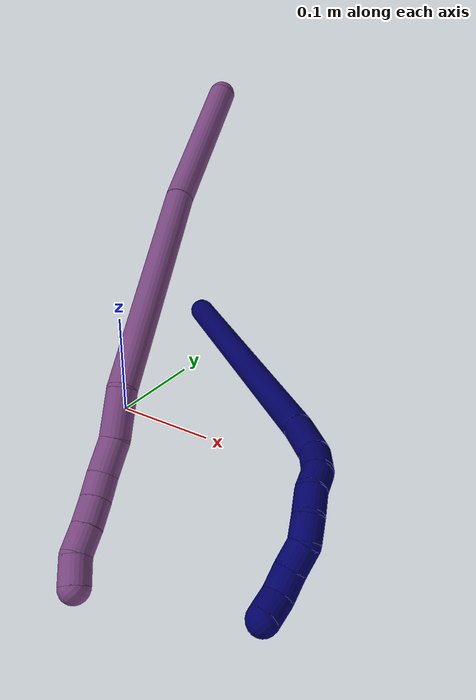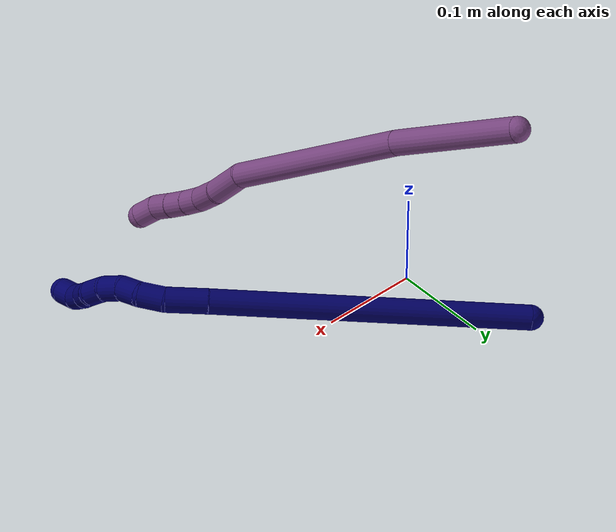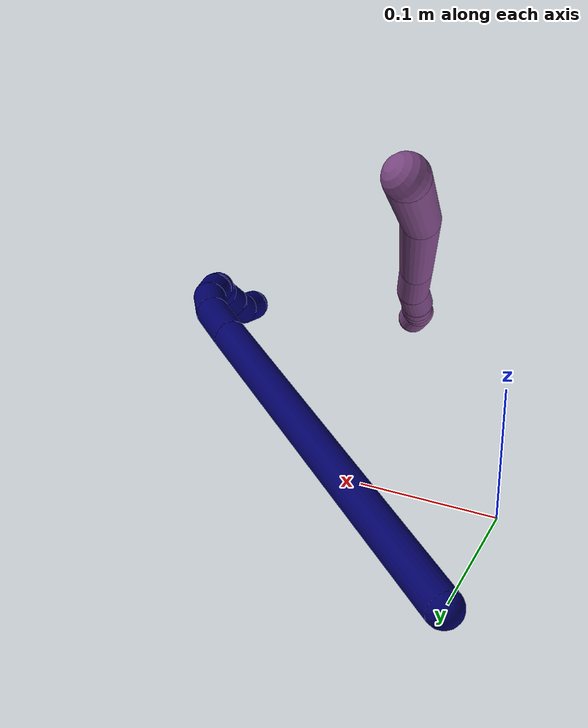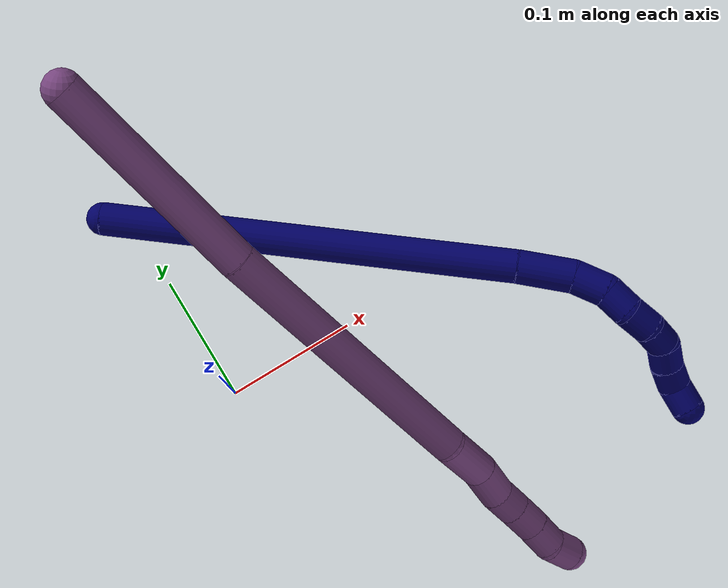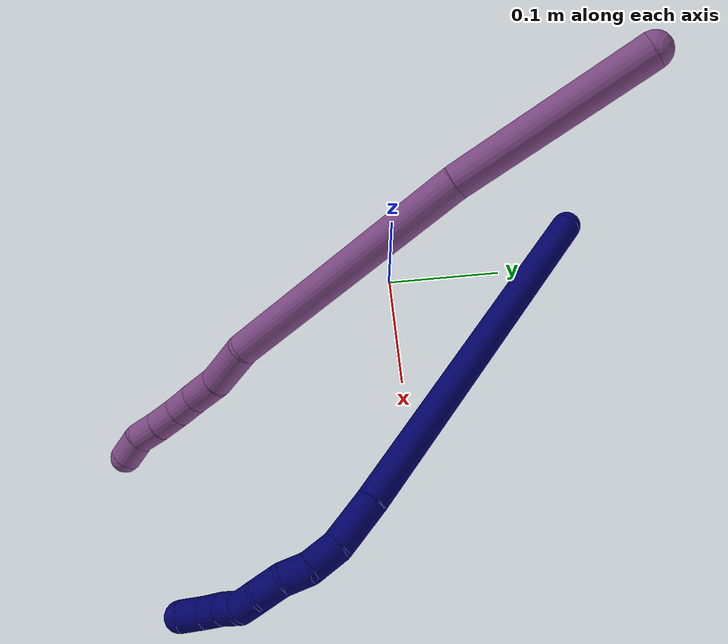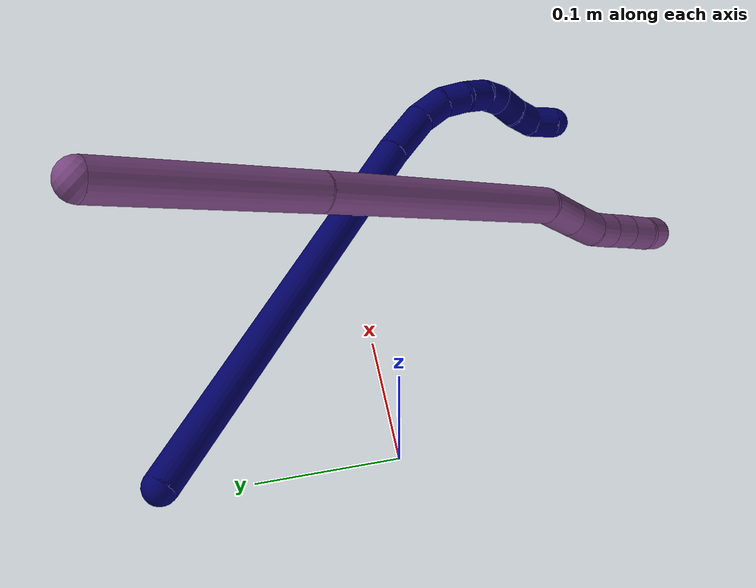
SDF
<sdf version="1.7">
 <world name="default">
  <model name="7">
   <static>0</static>
   <link name="7">
    <collision name="collision-cylinder-e_1_1_4">
     <pose>0.09733 -0.034654 -0.116008 2.85131 0.677109 2.35464</pose>
     <geometry><cylinder><radius>0.0125</radius><length>0.310689</length></cylinder></geometry>
     <surface>
      <friction><ode><mu>1.16</mu><mu2>1.16</mu2><slip1>0</slip1><slip2>0</slip2></ode></friction>
      <contact><ode><kp>1e+06</kp><kd>1</kd><max_vel>0</max_vel><min_depth>0.001</min_depth></ode></contact>
     </surface>
    </collision>
    <visual name="visual-cylinder-e_1_1_4">
     <pose>0.09733 -0.034654 -0.116008 2.85131 0.677109 2.35464</pose>
     <geometry><cylinder><radius>0.0125</radius><length>0.310689</length></cylinder></geometry>
     <material><ambient>0.003922 0 0.403922 1</ambient></material>
    </visual>
    <collision name="collision-cylinder-e_2_4_5">
     <pose>0.206725 -0.075126 -0.247806 2.78859 0.622048 2.12849</pose>
     <geometry><cylinder><radius>0.0125</radius><length>0.04141</length></cylinder></geometry>
     <surface>
      <friction><ode><mu>1.16</mu><mu2>1.16</mu2><slip1>0</slip1><slip2>0</slip2></ode></friction>
      <contact><ode><kp>1e+06</kp><kd>1</kd><max_vel>0</max_vel><min_depth>0.001</min_depth></ode></contact>
     </surface>
    </collision>
    <visual name="visual-cylinder-e_2_4_5">
     <pose>0.206725 -0.075126 -0.247806 2.78859 0.622048 2.12849</pose>
     <geometry><cylinder><radius>0.0125</radius><length>0.04141</length></cylinder></geometry>
     <material><ambient>0.003922 0 0.403922 1</ambient></material>
    </visual>
    <collision name="collision-cylinder-e_3_5_6">
     <pose>0.226061 -0.08728 -0.271899 2.48973 0.608116 1.49658</pose>
     <geometry><cylinder><radius>0.0125</radius><length>0.025455</length></cylinder></geometry>
     <surface>
      <friction><ode><mu>1.16</mu><mu2>1.16</mu2><slip1>0</slip1><slip2>0</slip2></ode></friction>
      <contact><ode><kp>1e+06</kp><kd>1</kd><max_vel>0</max_vel><min_depth>0.001</min_depth></ode></contact>
     </surface>
    </collision>
    <visual name="visual-cylinder-e_3_5_6">
     <pose>0.226061 -0.08728 -0.271899 2.48973 0.608116 1.49658</pose>
     <geometry><cylinder><radius>0.0125</radius><length>0.025455</length></cylinder></geometry>
     <material><ambient>0.003922 0 0.403922 1</ambient></material>
    </visual>
    <collision name="collision-cylinder-e_4_6_7">
     <pose>0.237328 -0.101537 -0.285647 2.17302 0.393989 0.725221</pose>
     <geometry><cylinder><radius>0.0125</radius><length>0.020816</length></cylinder></geometry>
     <surface>
      <friction><ode><mu>1.16</mu><mu2>1.16</mu2><slip1>0</slip1><slip2>0</slip2></ode></friction>
      <contact><ode><kp>1e+06</kp><kd>1</kd><max_vel>0</max_vel><min_depth>0.001</min_depth></ode></contact>
     </surface>
    </collision>
    <visual name="visual-cylinder-e_4_6_7">
     <pose>0.237328 -0.101537 -0.285647 2.17302 0.393989 0.725221</pose>
     <geometry><cylinder><radius>0.0125</radius><length>0.020816</length></cylinder></geometry>
     <material><ambient>0.003922 0 0.403922 1</ambient></material>
    </visual>
    <collision name="collision-cylinder-e_5_7_8">
     <pose>0.243003 -0.116571 -0.298726 2.39149 0.159592 0.400793</pose>
     <geometry><cylinder><radius>0.0125</radius><length>0.021138</length></cylinder></geometry>
     <surface>
      <friction><ode><mu>1.16</mu><mu2>1.16</mu2><slip1>0</slip1><slip2>0</slip2></ode></friction>
      <contact><ode><kp>1e+06</kp><kd>1</kd><max_vel>0</max_vel><min_depth>0.001</min_depth></ode></contact>
     </surface>
    </collision>
    <visual name="visual-cylinder-e_5_7_8">
     <pose>0.243003 -0.116571 -0.298726 2.39149 0.159592 0.400793</pose>
     <geometry><cylinder><radius>0.0125</radius><length>0.021138</length></cylinder></geometry>
     <material><ambient>0.003922 0 0.403922 1</ambient></material>
    </visual>
    <collision name="collision-cylinder-e_6_8_9">
     <pose>0.243445 -0.130436 -0.313683 2.39675 -0.123678 -0.314384</pose>
     <geometry><cylinder><radius>0.0125</radius><length>0.020074</length></cylinder></geometry>
     <surface>
      <friction><ode><mu>1.16</mu><mu2>1.16</mu2><slip1>0</slip1><slip2>0</slip2></ode></friction>
      <contact><ode><kp>1e+06</kp><kd>1</kd><max_vel>0</max_vel><min_depth>0.001</min_depth></ode></contact>
     </surface>
    </collision>
    <visual name="visual-cylinder-e_6_8_9">
     <pose>0.243445 -0.130436 -0.313683 2.39675 -0.123678 -0.314384</pose>
     <geometry><cylinder><radius>0.0125</radius><length>0.020074</length></cylinder></geometry>
     <material><ambient>0.003922 0 0.403922 1</ambient></material>
    </visual>
    <collision name="collision-cylinder-e_7_9_10">
     <pose>0.238421 -0.145485 -0.325216 2.04036 -0.386402 -0.616973</pose>
     <geometry><cylinder><radius>0.0125</radius><length>0.020091</length></cylinder></geometry>
     <surface>
      <friction><ode><mu>1.16</mu><mu2>1.16</mu2><slip1>0</slip1><slip2>0</slip2></ode></friction>
      <contact><ode><kp>1e+06</kp><kd>1</kd><max_vel>0</max_vel><min_depth>0.001</min_depth></ode></contact>
     </surface>
    </collision>
    <visual name="visual-cylinder-e_7_9_10">
     <pose>0.238421 -0.145485 -0.325216 2.04036 -0.386402 -0.616973</pose>
     <geometry><cylinder><radius>0.0125</radius><length>0.020091</length></cylinder></geometry>
     <material><ambient>0.003922 0 0.403922 1</ambient></material>
    </visual>
    <collision name="collision-cylinder-e_8_10_11">
     <pose>0.232188 -0.162149 -0.334418 2.10877 -0.246067 -0.428867</pose>
     <geometry><cylinder><radius>0.0125</radius><length>0.020089</length></cylinder></geometry>
     <surface>
      <friction><ode><mu>1.16</mu><mu2>1.16</mu2><slip1>0</slip1><slip2>0</slip2></ode></friction>
      <contact><ode><kp>1e+06</kp><kd>1</kd><max_vel>0</max_vel><min_depth>0.001</min_depth></ode></contact>
     </surface>
    </collision>
    <visual name="visual-cylinder-e_8_10_11">
     <pose>0.232188 -0.162149 -0.334418 2.10877 -0.246067 -0.428867</pose>
     <geometry><cylinder><radius>0.0125</radius><length>0.020089</length></cylinder></geometry>
     <material><ambient>0.003922 0 0.403922 1</ambient></material>
    </visual>
    <collision name="collision-cylinder-e_9_11_2">
     <pose>0.231615 -0.179655 -0.343325 1.9755 0.186197 0.281266</pose>
     <geometry><cylinder><radius>0.0125</radius><length>0.020237</length></cylinder></geometry>
     <surface>
      <friction><ode><mu>1.16</mu><mu2>1.16</mu2><slip1>0</slip1><slip2>0</slip2></ode></friction>
      <contact><ode><kp>1e+06</kp><kd>1</kd><max_vel>0</max_vel><min_depth>0.001</min_depth></ode></contact>
     </surface>
    </collision>
    <visual name="visual-cylinder-e_9_11_2">
     <pose>0.231615 -0.179655 -0.343325 1.9755 0.186197 0.281266</pose>
     <geometry><cylinder><radius>0.0125</radius><length>0.020237</length></cylinder></geometry>
     <material><ambient>0.003922 0 0.403922 1</ambient></material>
    </visual>
    <collision name="collision-sphere-2">
     <pose>0.233488 -0.188795 -0.34724 0 -0 0</pose>
     <geometry><sphere><radius>0.0125</radius></sphere></geometry>
     <surface>
      <friction><ode><mu>1.16</mu><mu2>1.16</mu2><slip1>0</slip1><slip2>0</slip2></ode></friction>
      <contact><ode><kp>1e+06</kp><kd>1</kd><max_vel>0</max_vel><min_depth>0.001</min_depth></ode></contact>
     </surface>
    </collision>
    <visual name="visual-sphere-2">
     <pose>0.233488 -0.188795 -0.34724 0 -0 0</pose>
     <geometry><sphere><radius>0.0125</radius></sphere></geometry>
     <material><ambient>0.003922 0 0.403922 1</ambient></material>
    </visual>
    <collision name="collision-sphere-11">
     <pose>0.229742 -0.170515 -0.33941 0 -0 0</pose>
     <geometry><sphere><radius>0.0125</radius></sphere></geometry>
     <surface>
      <friction><ode><mu>1.16</mu><mu2>1.16</mu2><slip1>0</slip1><slip2>0</slip2></ode></friction>
      <contact><ode><kp>1e+06</kp><kd>1</kd><max_vel>0</max_vel><min_depth>0.001</min_depth></ode></contact>
     </surface>
    </collision>
    <visual name="visual-sphere-11">
     <pose>0.229742 -0.170515 -0.33941 0 -0 0</pose>
     <geometry><sphere><radius>0.0125</radius></sphere></geometry>
     <material><ambient>0.003922 0 0.403922 1</ambient></material>
    </visual>
    <collision name="collision-sphere-10">
     <pose>0.234635 -0.153783 -0.329426 0 -0 0</pose>
     <geometry><sphere><radius>0.0125</radius></sphere></geometry>
     <surface>
      <friction><ode><mu>1.16</mu><mu2>1.16</mu2><slip1>0</slip1><slip2>0</slip2></ode></friction>
      <contact><ode><kp>1e+06</kp><kd>1</kd><max_vel>0</max_vel><min_depth>0.001</min_depth></ode></contact>
     </surface>
    </collision>
    <visual name="visual-sphere-10">
     <pose>0.234635 -0.153783 -0.329426 0 -0 0</pose>
     <geometry><sphere><radius>0.0125</radius></sphere></geometry>
     <material><ambient>0.003922 0 0.403922 1</ambient></material>
    </visual>
    <collision name="collision-sphere-9">
     <pose>0.242207 -0.137187 -0.321005 0 -0 0</pose>
     <geometry><sphere><radius>0.0125</radius></sphere></geometry>
     <surface>
      <friction><ode><mu>1.16</mu><mu2>1.16</mu2><slip1>0</slip1><slip2>0</slip2></ode></friction>
      <contact><ode><kp>1e+06</kp><kd>1</kd><max_vel>0</max_vel><min_depth>0.001</min_depth></ode></contact>
     </surface>
    </collision>
    <visual name="visual-sphere-9">
     <pose>0.242207 -0.137187 -0.321005 0 -0 0</pose>
     <geometry><sphere><radius>0.0125</radius></sphere></geometry>
     <material><ambient>0.003922 0 0.403922 1</ambient></material>
    </visual>
    <collision name="collision-sphere-4">
     <pose>0.19466 -0.069308 -0.232016 0 -0 0</pose>
     <geometry><sphere><radius>0.0125</radius></sphere></geometry>
     <surface>
      <friction><ode><mu>1.16</mu><mu2>1.16</mu2><slip1>0</slip1><slip2>0</slip2></ode></friction>
      <contact><ode><kp>1e+06</kp><kd>1</kd><max_vel>0</max_vel><min_depth>0.001</min_depth></ode></contact>
     </surface>
    </collision>
    <visual name="visual-sphere-4">
     <pose>0.19466 -0.069308 -0.232016 0 -0 0</pose>
     <geometry><sphere><radius>0.0125</radius></sphere></geometry>
     <material><ambient>0.003922 0 0.403922 1</ambient></material>
    </visual>
    <collision name="collision-sphere-1">
     <geometry><sphere><radius>0.0125</radius></sphere></geometry>
     <surface>
      <friction><ode><mu>1.16</mu><mu2>1.16</mu2><slip1>0</slip1><slip2>0</slip2></ode></friction>
      <contact><ode><kp>1e+06</kp><kd>1</kd><max_vel>0</max_vel><min_depth>0.001</min_depth></ode></contact>
     </surface>
    </collision>
    <visual name="visual-sphere-1">
     <geometry><sphere><radius>0.0125</radius></sphere></geometry>
     <material><ambient>0.003922 0 0.403922 1</ambient></material>
    </visual>
    <collision name="collision-sphere-8">
     <pose>0.244683 -0.123684 -0.30636 0 -0 0</pose>
     <geometry><sphere><radius>0.0125</radius></sphere></geometry>
     <surface>
      <friction><ode><mu>1.16</mu><mu2>1.16</mu2><slip1>0</slip1><slip2>0</slip2></ode></friction>
      <contact><ode><kp>1e+06</kp><kd>1</kd><max_vel>0</max_vel><min_depth>0.001</min_depth></ode></contact>
     </surface>
    </collision>
    <visual name="visual-sphere-8">
     <pose>0.244683 -0.123684 -0.30636 0 -0 0</pose>
     <geometry><sphere><radius>0.0125</radius></sphere></geometry>
     <material><ambient>0.003922 0 0.403922 1</ambient></material>
    </visual>
    <collision name="collision-sphere-5">
     <pose>0.21879 -0.080943 -0.263595 0 -0 0</pose>
     <geometry><sphere><radius>0.0125</radius></sphere></geometry>
     <surface>
      <friction><ode><mu>1.16</mu><mu2>1.16</mu2><slip1>0</slip1><slip2>0</slip2></ode></friction>
      <contact><ode><kp>1e+06</kp><kd>1</kd><max_vel>0</max_vel><min_depth>0.001</min_depth></ode></contact>
     </surface>
    </collision>
    <visual name="visual-sphere-5">
     <pose>0.21879 -0.080943 -0.263595 0 -0 0</pose>
     <geometry><sphere><radius>0.0125</radius></sphere></geometry>
     <material><ambient>0.003922 0 0.403922 1</ambient></material>
    </visual>
    <collision name="collision-sphere-6">
     <pose>0.233333 -0.093617 -0.280203 0 -0 0</pose>
     <geometry><sphere><radius>0.0125</radius></sphere></geometry>
     <surface>
      <friction><ode><mu>1.16</mu><mu2>1.16</mu2><slip1>0</slip1><slip2>0</slip2></ode></friction>
      <contact><ode><kp>1e+06</kp><kd>1</kd><max_vel>0</max_vel><min_depth>0.001</min_depth></ode></contact>
     </surface>
    </collision>
    <visual name="visual-sphere-6">
     <pose>0.233333 -0.093617 -0.280203 0 -0 0</pose>
     <geometry><sphere><radius>0.0125</radius></sphere></geometry>
     <material><ambient>0.003922 0 0.403922 1</ambient></material>
    </visual>
    <collision name="collision-sphere-7">
     <pose>0.241324 -0.109457 -0.291092 0 -0 0</pose>
     <geometry><sphere><radius>0.0125</radius></sphere></geometry>
     <surface>
      <friction><ode><mu>1.16</mu><mu2>1.16</mu2><slip1>0</slip1><slip2>0</slip2></ode></friction>
      <contact><ode><kp>1e+06</kp><kd>1</kd><max_vel>0</max_vel><min_depth>0.001</min_depth></ode></contact>
     </surface>
    </collision>
    <visual name="visual-sphere-7">
     <pose>0.241324 -0.109457 -0.291092 0 -0 0</pose>
     <geometry><sphere><radius>0.0125</radius></sphere></geometry>
     <material><ambient>0.003922 0 0.403922 1</ambient></material>
    </visual>
    <inertial>
     <pose>0.14732 -0.066223 -0.183966 0 -0 0</pose>
     <mass>0.5</mass>
     <inertia>
      <ixx>3.4e-05</ixx>
      <ixy>0</ixy>
      <ixz>0</ixz>
      <iyy>0.003399</iyy>
      <iyz>0</iyz>
      <izz>-0.001036</izz>
     </inertia>
    </inertial>
   </link>
   <pose>-0.015756 0.157661 0.045175 0.392555 -0.982904 -0.771991</pose>
  </model>
  <model name="20">
   <static>0</static>
   <link name="20">
    <collision name="collision-cylinder-e_1_1_4">
     <pose>0.020882 -0.046734 -0.051799 2.40756 0.290823 0.727929</pose>
     <geometry><cylinder><radius>0.0125</radius><length>0.145647</length></cylinder></geometry>
     <surface>
      <friction><ode><mu>1.16</mu><mu2>1.16</mu2><slip1>0</slip1><slip2>0</slip2></ode></friction>
      <contact><ode><kp>1e+06</kp><kd>1</kd><max_vel>0</max_vel><min_depth>0.001</min_depth></ode></contact>
     </surface>
    </collision>
    <visual name="visual-cylinder-e_1_1_4">
     <pose>0.020882 -0.046734 -0.051799 2.40756 0.290823 0.727929</pose>
     <geometry><cylinder><radius>0.0125</radius><length>0.145647</length></cylinder></geometry>
     <material><ambient>0.478431 0.278431 0.509804 1</ambient></material>
    </visual>
    <collision name="collision-cylinder-e_2_4_5">
     <pose>0.07792 -0.156136 -0.172481 2.40339 0.370349 0.901934</pose>
     <geometry><cylinder><radius>0.0125</radius><length>0.199794</length></cylinder></geometry>
     <surface>
      <friction><ode><mu>1.16</mu><mu2>1.16</mu2><slip1>0</slip1><slip2>0</slip2></ode></friction>
      <contact><ode><kp>1e+06</kp><kd>1</kd><max_vel>0</max_vel><min_depth>0.001</min_depth></ode></contact>
     </surface>
    </collision>
    <visual name="visual-cylinder-e_2_4_5">
     <pose>0.07792 -0.156136 -0.172481 2.40339 0.370349 0.901934</pose>
     <geometry><cylinder><radius>0.0125</radius><length>0.199794</length></cylinder></geometry>
     <material><ambient>0.478431 0.278431 0.509804 1</ambient></material>
    </visual>
    <collision name="collision-cylinder-e_3_5_6">
     <pose>0.125221 -0.227192 -0.255709 2.61253 0.590718 1.68674</pose>
     <geometry><cylinder><radius>0.0125</radius><length>0.040017</length></cylinder></geometry>
     <surface>
      <friction><ode><mu>1.16</mu><mu2>1.16</mu2><slip1>0</slip1><slip2>0</slip2></ode></friction>
      <contact><ode><kp>1e+06</kp><kd>1</kd><max_vel>0</max_vel><min_depth>0.001</min_depth></ode></contact>
     </surface>
    </collision>
    <visual name="visual-cylinder-e_3_5_6">
     <pose>0.125221 -0.227192 -0.255709 2.61253 0.590718 1.68674</pose>
     <geometry><cylinder><radius>0.0125</radius><length>0.040017</length></cylinder></geometry>
     <material><ambient>0.478431 0.278431 0.509804 1</ambient></material>
    </visual>
    <collision name="collision-cylinder-e_4_6_7">
     <pose>0.142099 -0.241451 -0.28168 2.67389 0.414789 1.44707</pose>
     <geometry><cylinder><radius>0.0125</radius><length>0.02846</length></cylinder></geometry>
     <surface>
      <friction><ode><mu>1.16</mu><mu2>1.16</mu2><slip1>0</slip1><slip2>0</slip2></ode></friction>
      <contact><ode><kp>1e+06</kp><kd>1</kd><max_vel>0</max_vel><min_depth>0.001</min_depth></ode></contact>
     </surface>
    </collision>
    <visual name="visual-cylinder-e_4_6_7">
     <pose>0.142099 -0.241451 -0.28168 2.67389 0.414789 1.44707</pose>
     <geometry><cylinder><radius>0.0125</radius><length>0.02846</length></cylinder></geometry>
     <material><ambient>0.478431 0.278431 0.509804 1</ambient></material>
    </visual>
    <collision name="collision-cylinder-e_5_7_8">
     <pose>0.151676 -0.253296 -0.300344 2.43793 0.394358 0.996742</pose>
     <geometry><cylinder><radius>0.0125</radius><length>0.020001</length></cylinder></geometry>
     <surface>
      <friction><ode><mu>1.16</mu><mu2>1.16</mu2><slip1>0</slip1><slip2>0</slip2></ode></friction>
      <contact><ode><kp>1e+06</kp><kd>1</kd><max_vel>0</max_vel><min_depth>0.001</min_depth></ode></contact>
     </surface>
    </collision>
    <visual name="visual-cylinder-e_5_7_8">
     <pose>0.151676 -0.253296 -0.300344 2.43793 0.394358 0.996742</pose>
     <geometry><cylinder><radius>0.0125</radius><length>0.020001</length></cylinder></geometry>
     <material><ambient>0.478431 0.278431 0.509804 1</ambient></material>
    </visual>
    <collision name="collision-cylinder-e_6_8_9">
     <pose>0.15923 -0.266054 -0.315034 2.41607 0.34824 0.867945</pose>
     <geometry><cylinder><radius>0.0125</radius><length>0.021755</length></cylinder></geometry>
     <surface>
      <friction><ode><mu>1.16</mu><mu2>1.16</mu2><slip1>0</slip1><slip2>0</slip2></ode></friction>
      <contact><ode><kp>1e+06</kp><kd>1</kd><max_vel>0</max_vel><min_depth>0.001</min_depth></ode></contact>
     </surface>
    </collision>
    <visual name="visual-cylinder-e_6_8_9">
     <pose>0.15923 -0.266054 -0.315034 2.41607 0.34824 0.867945</pose>
     <geometry><cylinder><radius>0.0125</radius><length>0.021755</length></cylinder></geometry>
     <material><ambient>0.478431 0.278431 0.509804 1</ambient></material>
    </visual>
    <collision name="collision-cylinder-e_7_9_10">
     <pose>0.166152 -0.279489 -0.33072 2.45028 0.298496 0.79109</pose>
     <geometry><cylinder><radius>0.0125</radius><length>0.021828</length></cylinder></geometry>
     <surface>
      <friction><ode><mu>1.16</mu><mu2>1.16</mu2><slip1>0</slip1><slip2>0</slip2></ode></friction>
      <contact><ode><kp>1e+06</kp><kd>1</kd><max_vel>0</max_vel><min_depth>0.001</min_depth></ode></contact>
     </surface>
    </collision>
    <visual name="visual-cylinder-e_7_9_10">
     <pose>0.166152 -0.279489 -0.33072 2.45028 0.298496 0.79109</pose>
     <geometry><cylinder><radius>0.0125</radius><length>0.021828</length></cylinder></geometry>
     <material><ambient>0.478431 0.278431 0.509804 1</ambient></material>
    </visual>
    <collision name="collision-cylinder-e_8_10_2">
     <pose>0.175897 -0.292618 -0.345226 2.35551 0.619927 1.31548</pose>
     <geometry><cylinder><radius>0.0125</radius><length>0.022498</length></cylinder></geometry>
     <surface>
      <friction><ode><mu>1.16</mu><mu2>1.16</mu2><slip1>0</slip1><slip2>0</slip2></ode></friction>
      <contact><ode><kp>1e+06</kp><kd>1</kd><max_vel>0</max_vel><min_depth>0.001</min_depth></ode></contact>
     </surface>
    </collision>
    <visual name="visual-cylinder-e_8_10_2">
     <pose>0.175897 -0.292618 -0.345226 2.35551 0.619927 1.31548</pose>
     <geometry><cylinder><radius>0.0125</radius><length>0.022498</length></cylinder></geometry>
     <material><ambient>0.478431 0.278431 0.509804 1</ambient></material>
    </visual>
    <collision name="collision-sphere-2">
     <pose>0.182432 -0.299096 -0.351696 0 -0 0</pose>
     <geometry><sphere><radius>0.0125</radius></sphere></geometry>
     <surface>
      <friction><ode><mu>1.16</mu><mu2>1.16</mu2><slip1>0</slip1><slip2>0</slip2></ode></friction>
      <contact><ode><kp>1e+06</kp><kd>1</kd><max_vel>0</max_vel><min_depth>0.001</min_depth></ode></contact>
     </surface>
    </collision>
    <visual name="visual-sphere-2">
     <pose>0.182432 -0.299096 -0.351696 0 -0 0</pose>
     <geometry><sphere><radius>0.0125</radius></sphere></geometry>
     <material><ambient>0.478431 0.278431 0.509804 1</ambient></material>
    </visual>
    <collision name="collision-sphere-10">
     <pose>0.169361 -0.286139 -0.338756 0 -0 0</pose>
     <geometry><sphere><radius>0.0125</radius></sphere></geometry>
     <surface>
      <friction><ode><mu>1.16</mu><mu2>1.16</mu2><slip1>0</slip1><slip2>0</slip2></ode></friction>
      <contact><ode><kp>1e+06</kp><kd>1</kd><max_vel>0</max_vel><min_depth>0.001</min_depth></ode></contact>
     </surface>
    </collision>
    <visual name="visual-sphere-10">
     <pose>0.169361 -0.286139 -0.338756 0 -0 0</pose>
     <geometry><sphere><radius>0.0125</radius></sphere></geometry>
     <material><ambient>0.478431 0.278431 0.509804 1</ambient></material>
    </visual>
    <collision name="collision-sphere-9">
     <pose>0.162942 -0.272838 -0.322683 0 -0 0</pose>
     <geometry><sphere><radius>0.0125</radius></sphere></geometry>
     <surface>
      <friction><ode><mu>1.16</mu><mu2>1.16</mu2><slip1>0</slip1><slip2>0</slip2></ode></friction>
      <contact><ode><kp>1e+06</kp><kd>1</kd><max_vel>0</max_vel><min_depth>0.001</min_depth></ode></contact>
     </surface>
    </collision>
    <visual name="visual-sphere-9">
     <pose>0.162942 -0.272838 -0.322683 0 -0 0</pose>
     <geometry><sphere><radius>0.0125</radius></sphere></geometry>
     <material><ambient>0.478431 0.278431 0.509804 1</ambient></material>
    </visual>
    <collision name="collision-sphere-4">
     <pose>0.041763 -0.093468 -0.103599 0 -0 0</pose>
     <geometry><sphere><radius>0.0125</radius></sphere></geometry>
     <surface>
      <friction><ode><mu>1.16</mu><mu2>1.16</mu2><slip1>0</slip1><slip2>0</slip2></ode></friction>
      <contact><ode><kp>1e+06</kp><kd>1</kd><max_vel>0</max_vel><min_depth>0.001</min_depth></ode></contact>
     </surface>
    </collision>
    <visual name="visual-sphere-4">
     <pose>0.041763 -0.093468 -0.103599 0 -0 0</pose>
     <geometry><sphere><radius>0.0125</radius></sphere></geometry>
     <material><ambient>0.478431 0.278431 0.509804 1</ambient></material>
    </visual>
    <collision name="collision-sphere-1">
     <geometry><sphere><radius>0.0125</radius></sphere></geometry>
     <surface>
      <friction><ode><mu>1.16</mu><mu2>1.16</mu2><slip1>0</slip1><slip2>0</slip2></ode></friction>
      <contact><ode><kp>1e+06</kp><kd>1</kd><max_vel>0</max_vel><min_depth>0.001</min_depth></ode></contact>
     </surface>
    </collision>
    <visual name="visual-sphere-1">
     <geometry><sphere><radius>0.0125</radius></sphere></geometry>
     <material><ambient>0.478431 0.278431 0.509804 1</ambient></material>
    </visual>
    <collision name="collision-sphere-8">
     <pose>0.155518 -0.25927 -0.307384 0 -0 0</pose>
     <geometry><sphere><radius>0.0125</radius></sphere></geometry>
     <surface>
      <friction><ode><mu>1.16</mu><mu2>1.16</mu2><slip1>0</slip1><slip2>0</slip2></ode></friction>
      <contact><ode><kp>1e+06</kp><kd>1</kd><max_vel>0</max_vel><min_depth>0.001</min_depth></ode></contact>
     </surface>
    </collision>
    <visual name="visual-sphere-8">
     <pose>0.155518 -0.25927 -0.307384 0 -0 0</pose>
     <geometry><sphere><radius>0.0125</radius></sphere></geometry>
     <material><ambient>0.478431 0.278431 0.509804 1</ambient></material>
    </visual>
    <collision name="collision-sphere-5">
     <pose>0.114077 -0.218804 -0.241363 0 -0 0</pose>
     <geometry><sphere><radius>0.0125</radius></sphere></geometry>
     <surface>
      <friction><ode><mu>1.16</mu><mu2>1.16</mu2><slip1>0</slip1><slip2>0</slip2></ode></friction>
      <contact><ode><kp>1e+06</kp><kd>1</kd><max_vel>0</max_vel><min_depth>0.001</min_depth></ode></contact>
     </surface>
    </collision>
    <visual name="visual-sphere-5">
     <pose>0.114077 -0.218804 -0.241363 0 -0 0</pose>
     <geometry><sphere><radius>0.0125</radius></sphere></geometry>
     <material><ambient>0.478431 0.278431 0.509804 1</ambient></material>
    </visual>
    <collision name="collision-sphere-6">
     <pose>0.136365 -0.23558 -0.270055 0 -0 0</pose>
     <geometry><sphere><radius>0.0125</radius></sphere></geometry>
     <surface>
      <friction><ode><mu>1.16</mu><mu2>1.16</mu2><slip1>0</slip1><slip2>0</slip2></ode></friction>
      <contact><ode><kp>1e+06</kp><kd>1</kd><max_vel>0</max_vel><min_depth>0.001</min_depth></ode></contact>
     </surface>
    </collision>
    <visual name="visual-sphere-6">
     <pose>0.136365 -0.23558 -0.270055 0 -0 0</pose>
     <geometry><sphere><radius>0.0125</radius></sphere></geometry>
     <material><ambient>0.478431 0.278431 0.509804 1</ambient></material>
    </visual>
    <collision name="collision-sphere-7">
     <pose>0.147834 -0.247322 -0.293305 0 -0 0</pose>
     <geometry><sphere><radius>0.0125</radius></sphere></geometry>
     <surface>
      <friction><ode><mu>1.16</mu><mu2>1.16</mu2><slip1>0</slip1><slip2>0</slip2></ode></friction>
      <contact><ode><kp>1e+06</kp><kd>1</kd><max_vel>0</max_vel><min_depth>0.001</min_depth></ode></contact>
     </surface>
    </collision>
    <visual name="visual-sphere-7">
     <pose>0.147834 -0.247322 -0.293305 0 -0 0</pose>
     <geometry><sphere><radius>0.0125</radius></sphere></geometry>
     <material><ambient>0.478431 0.278431 0.509804 1</ambient></material>
    </visual>
    <inertial>
     <pose>0.083492 -0.155006 -0.176202 0 -0 0</pose>
     <mass>0.5</mass>
     <inertia>
      <ixx>0.001267</ixx>
      <ixy>0</ixy>
      <ixz>0</ixz>
      <iyy>0.000359</iyy>
      <iyz>0</iyz>
      <izz>0.000245</izz>
     </inertia>
    </inertial>
   </link>
   <pose>0.015158 0.156222 0.292612 -0.394576 0.828815 0.407802</pose>
  </model>
 </world>
</sdf>
